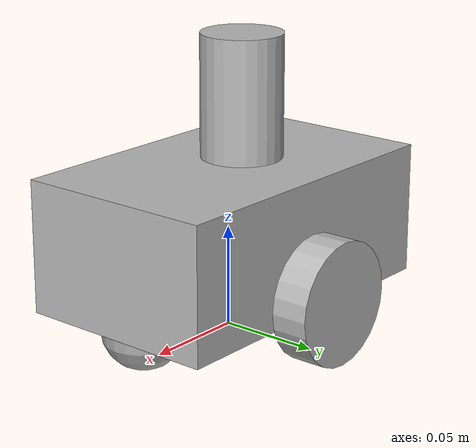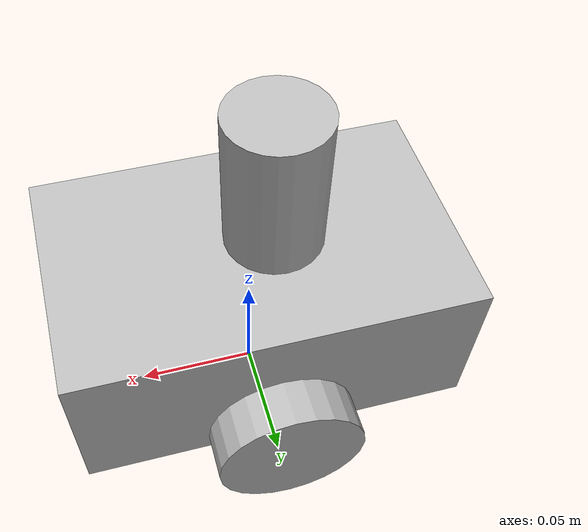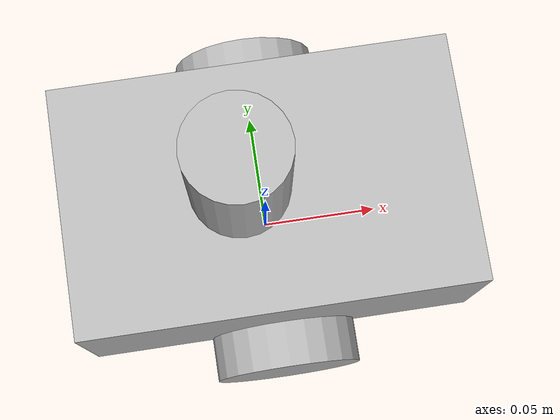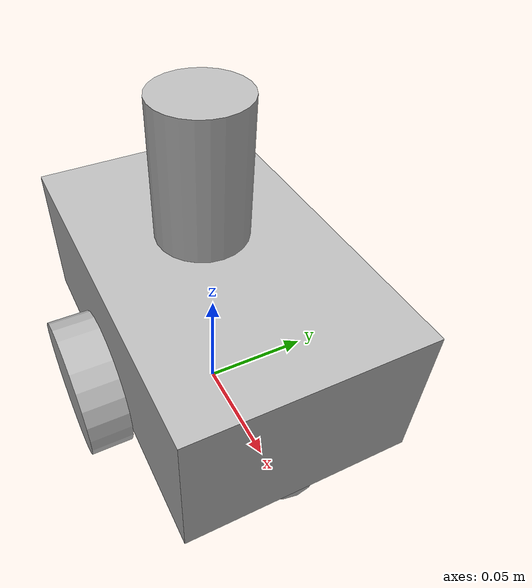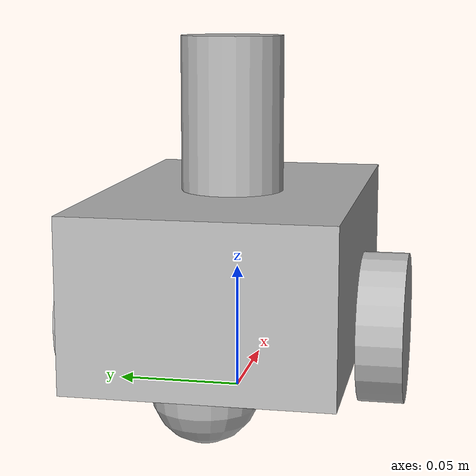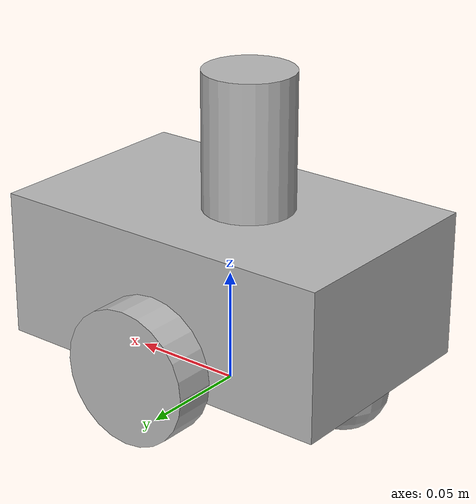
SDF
<?xml version='1.0'?>
<sdf version='1.6'>
  <model name='scanbot_sdf'>

    <static>false</static>
    <pose>0 0 -0.05 0 0 0</pose>

    <link name='chassis'>
      <pose>0 0 0.1 0 0 0</pose>

      <inertial>
        <mass>0.5</mass>
        <inertia>
          <iyy>0.00124270833</iyy>
          <ixx>0.00059270833</ixx>
          <izz>0.00148333333</izz>
          <ixy>0</ixy>
          <ixz>0</ixz>
          <iyz>0</iyz>
        </inertia>
      </inertial>

      <collision name='base_collision'>
        <geometry>
          <box>
            <size>0.160 0.100 0.065</size>
          </box>
        </geometry>
      </collision>

      <visual name='base_visual'>
        <geometry>
          <box>
            <size>0.160 0.100 0.065</size>
          </box>
        </geometry>
      </visual>

      <collision name='caster_collision'>
        <pose>0.06 0 -0.0325 0 0 0</pose>
        <geometry>
          <sphere>
            <radius>0.02</radius>
          </sphere>
        </geometry>
        <surface>
          <friction>
            <ode>
              <mu>0</mu>
              <mu2>0</mu2>
              <slip1>1.0</slip1>
              <slip2>1.0</slip2>
            </ode>
          </friction>
        </surface>
      </collision>

      <visual name='caster_visual'>
        <pose>0.06 0 -0.0325 0 0 0</pose>
        <geometry>
          <sphere>
            <radius>0.02</radius>
          </sphere>
        </geometry>
      </visual>

      <collision name='caster2_collision'>
        <pose>-0.06 0 -0.0325 0 0 0</pose>
        <geometry>
          <sphere>
            <radius>0.02</radius>
          </sphere>
        </geometry>
        <surface>
          <friction>
            <ode>
              <mu>0</mu>
              <mu2>0</mu2>
              <slip1>1.0</slip1>
              <slip2>1.0</slip2>
            </ode>
          </friction>
        </surface>
      </collision>

      <visual name='caster2_visual'>
        <pose>-0.06 0 -0.0325 0 0 0</pose>
        <geometry>
          <sphere>
            <radius>0.02</radius>
          </sphere>
        </geometry>
      </visual>

    </link>

    <link name="left_wheel">
      <pose>0 0.06 0.0775 0 1.5707 1.5707</pose>

      <inertial>
        <mass>0.075</mass>
        <inertia>
          <ixx>0.0000189</ixx>
          <iyy>0.0000189</iyy>
          <izz>0.00003375</izz>
          <ixy>0</ixy>
          <ixz>0</ixz>
          <iyz>0</iyz>
        </inertia>
      </inertial>

      <collision name="left_wheel_collision">
        <geometry>
          <cylinder>
            <radius>0.03</radius>
            <length>0.018</length>
          </cylinder>
        </geometry>
      </collision>

      <visual name="left_wheel_visual">
        <geometry>
          <cylinder>
            <radius>0.03</radius>
            <length>0.018</length>
          </cylinder>
        </geometry>
      </visual>

    </link>

    <link name="right_wheel">
      <pose>0 -0.06 0.0775 0 1.5707 1.5707</pose>

      <inertial>
        <mass>0.075</mass>
        <inertia>
          <ixx>0.0000189</ixx>
          <iyy>0.0000189</iyy>
          <izz>0.00003375</izz>
          <ixy>0</ixy>
          <ixz>0</ixz>
          <iyz>0</iyz>
        </inertia>
      </inertial>

      <collision name="right_wheel_collision">
        <geometry>
          <cylinder>
            <radius>0.03</radius>
            <length>0.018</length>
          </cylinder>
        </geometry>
      </collision>

      <visual name="right_wheel_visual">
        <geometry>
          <cylinder>
            <radius>0.03</radius>
            <length>0.018</length>
          </cylinder>
        </geometry>
      </visual>

    </link>

    <link name="tower">
      <pose>-0.01 0 0.163 0 0 0</pose>

      <inertial>
        <mass>0.050</mass>
        <inertia>
          <ixx>0.00002</ixx>
          <iyy>0.00002</iyy>
          <izz>0.00001</izz>
          <ixy>0</ixy>
          <ixz>0</ixz>
          <iyz>0</iyz>
        </inertia>
      </inertial>

      <collision name="tower_collision">
        <geometry>
          <cylinder>
            <radius>0.02</radius>
            <length>0.06</length>
          </cylinder>
        </geometry>
      </collision>

      <visual name="tower_visual">
        <geometry>
          <cylinder>
            <radius>0.02</radius>
            <length>0.06</length>
          </cylinder>
        </geometry>
      </visual>

    <sensor type="ray" name="lidar">
      <pose>0 0 0 0 0 0</pose>
      <visualize>true</visualize>
      <update_rate>4</update_rate>
      <ray>
        <scan>
          <horizontal>
            <!-- number of beams = samples * resolution -->
            <samples>180</samples>
            <resolution>1</resolution>
            <min_angle>1.57079632679</min_angle>
            <max_angle>4.71238898038</max_angle>
          </horizontal>
        </scan>
        <range>
          <min>0.2</min>
          <max>8</max>
          <resolution>0.06</resolution>
        </range>
        <noise>
          <type>gaussian</type>
          <mean>0.0</mean>
          <stddev>0.06</stddev>
        </noise>
      </ray>
    </sensor>

    </link>

    <joint type="revolute" name="left_wheel_revolute">
      <pose>0 0 -0.010 0 0 0</pose>
      <child>left_wheel</child>
      <parent>chassis</parent>
      <axis>
        <xyz>0 0 1</xyz>
      </axis>
    </joint>

    <joint type="revolute" name="right_wheel_revolute">
      <pose>0 0 0.010 0 0 0</pose>
      <child>right_wheel</child>
      <parent>chassis</parent>
      <axis>
        <xyz>0 0 1</xyz>
      </axis>
    </joint>

    <joint type="revolute" name="tower_revolute">
      <pose>0 0 -0.03 0 0 0</pose>
      <child>tower</child>
      <parent>chassis</parent>
      <axis>
        <xyz>0 0 1</xyz>
        <limit>
        <lower>0</lower>
        <upper>0</upper>
        </limit>
      </axis>
    </joint>

  </model>
</sdf>
